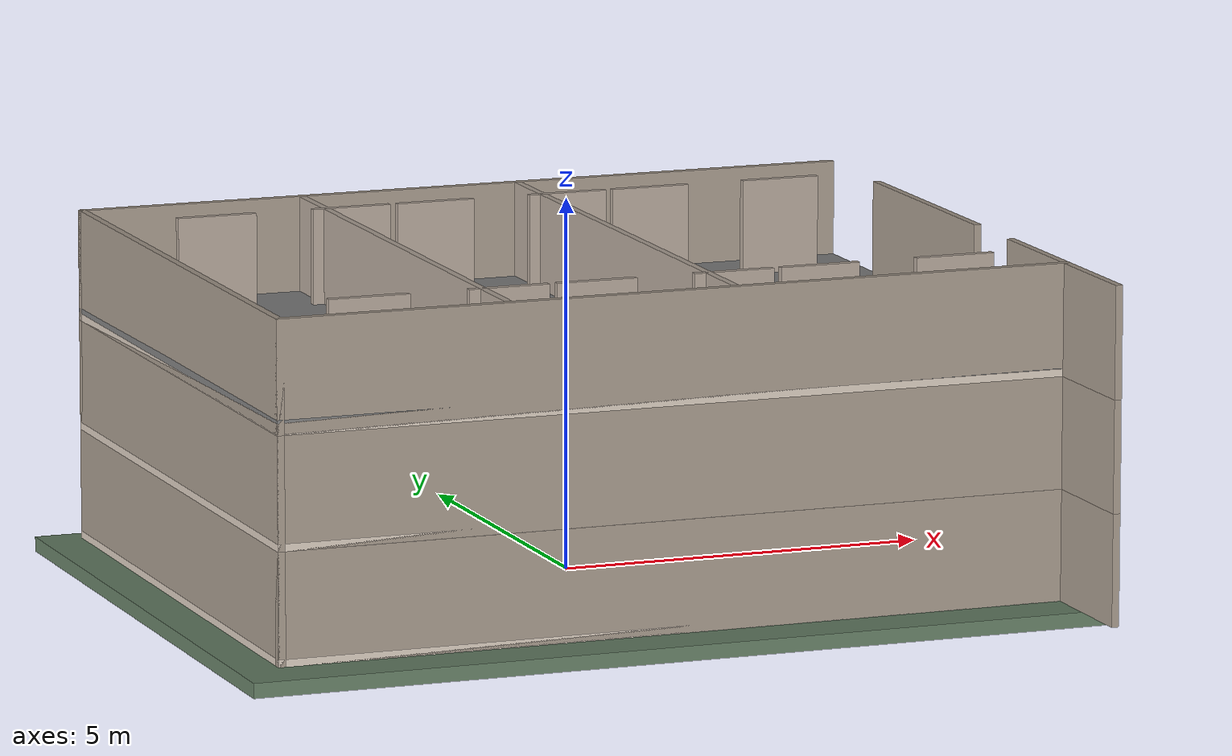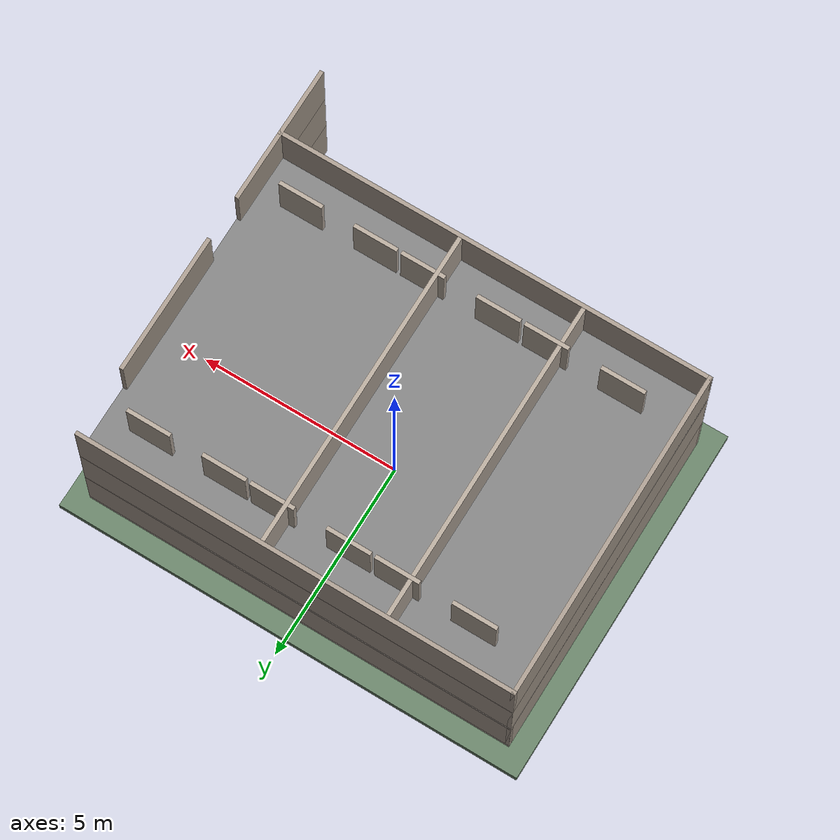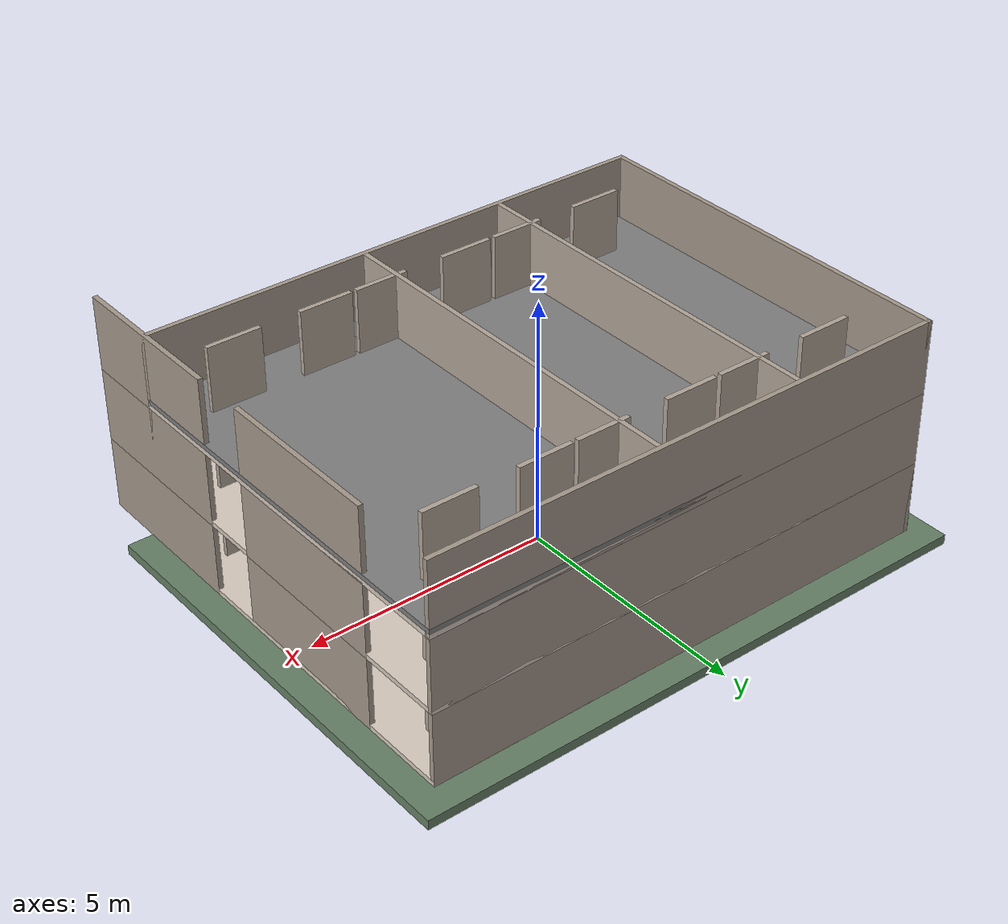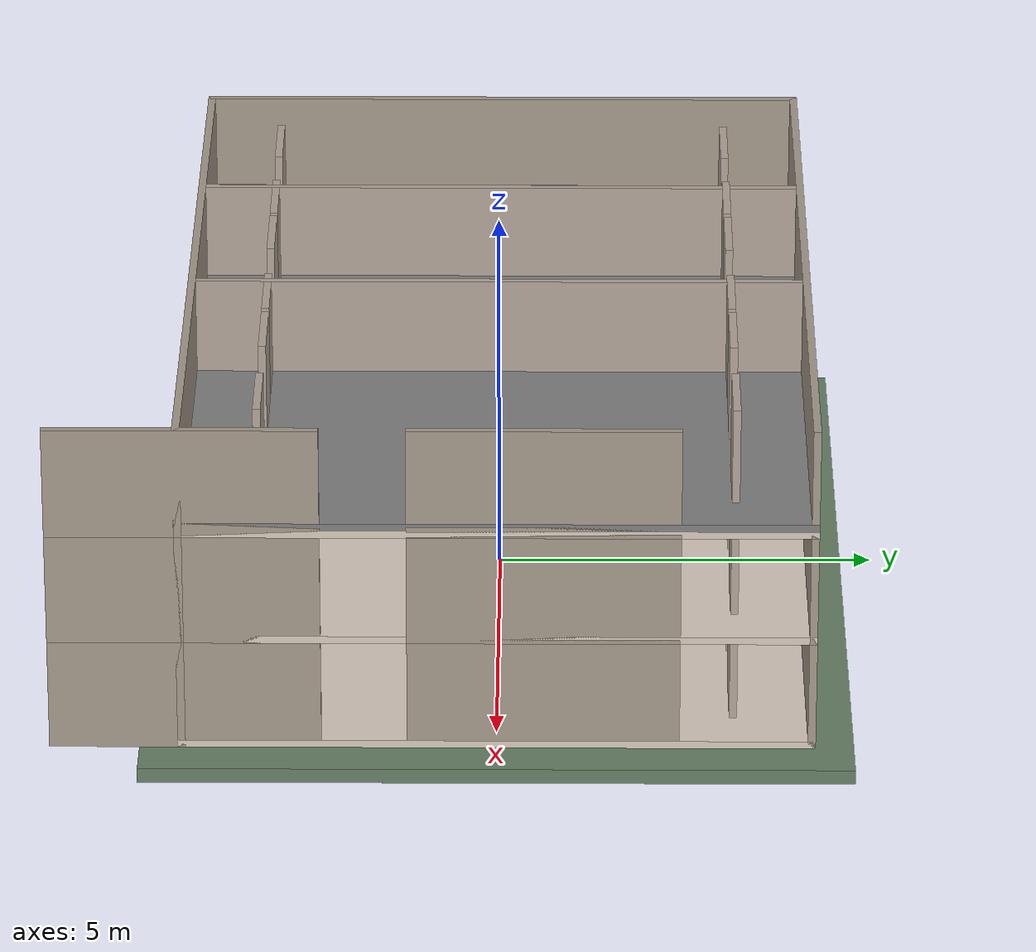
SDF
<?xml version='1.0'?>
<sdf version='1.7'>
  <model name='MultiFloorBuilding'>
    <static>true</static>

    <!-- Ground base -->
    <link name='ground_base'>
      <pose>0 0 -0.15 0 0 0</pose>
      <visual name='visual'>
        <geometry><box><size>11.9 9.2 0.2</size></box></geometry>
        <material><ambient>0.3 0.4 0.3 1</ambient><diffuse>0.4 0.5 0.4 1</diffuse></material>
      </visual>
      <collision name='collision'>
        <geometry><box><size>11.9 9.2 0.2</size></box></geometry>
      </collision>
    </link>

    <!-- Floor 0 -->
    <link name='floor_0'>
      <pose>0 0 0.05 0 0 0</pose>
      <visual name='visual'>
        <geometry><box><size>10.9 8.2 0.1</size></box></geometry>
        <material><ambient>0.8 0.75 0.7 1</ambient><diffuse>0.85 0.8 0.75 1</diffuse></material>
      </visual>
      <collision name='collision'>
        <geometry><box><size>10.9 8.2 0.1</size></box></geometry>
      </collision>
    </link>

    <!-- Outer walls -->
    <link name='outer_wall_north_0'>
      <pose>0 4.05 0.75 0 0 0</pose>
      <visual name='visual'>
        <geometry><box><size>10.9 0.1 1.5</size></box></geometry>
        <material><ambient>0.55 0.5 0.45 1</ambient><diffuse>0.65 0.6 0.55 1</diffuse></material>
      </visual>
      <collision name='collision'>
        <geometry><box><size>10.9 0.1 1.5</size></box></geometry>
      </collision>
    </link>

    <link name='outer_wall_south_0'>
      <pose>0 -4.05 0.75 0 0 0</pose>
      <visual name='visual'>
        <geometry><box><size>10.9 0.1 1.5</size></box></geometry>
        <material><ambient>0.55 0.5 0.45 1</ambient><diffuse>0.65 0.6 0.55 1</diffuse></material>
      </visual>
      <collision name='collision'>
        <geometry><box><size>10.9 0.1 1.5</size></box></geometry>
      </collision>
    </link>

    <link name='outer_wall_west_0'>
      <pose>-5.4 0 0.75 0 0 0</pose>
      <visual name='visual'>
        <geometry><box><size>0.1 8.2 1.5</size></box></geometry>
        <material><ambient>0.55 0.5 0.45 1</ambient><diffuse>0.65 0.6 0.55 1</diffuse></material>
      </visual>
      <collision name='collision'>
        <geometry><box><size>0.1 8.2 1.5</size></box></geometry>
      </collision>
    </link>

    <!-- East outer wall with entrance gap -->
    <link name='outer_wall_east_top_0'>
      <pose>5.4 0.6 0.75 0 0 0</pose>
      <visual name='visual'>
        <geometry><box><size>0.1 3.4999999999999996 1.5</size></box></geometry>
        <material><ambient>0.55 0.5 0.45 1</ambient><diffuse>0.65 0.6 0.55 1</diffuse></material>
      </visual>
      <collision name='collision'>
        <geometry><box><size>0.1 3.4999999999999996 1.5</size></box></geometry>
      </collision>
    </link>

    <link name='outer_wall_east_bottom_0'>
      <pose>5.4 -3.9999999999999996 0.75 0 0 0</pose>
      <visual name='visual'>
        <geometry><box><size>0.1 3.4999999999999996 1.5</size></box></geometry>
        <material><ambient>0.55 0.5 0.45 1</ambient><diffuse>0.65 0.6 0.55 1</diffuse></material>
      </visual>
      <collision name='collision'>
        <geometry><box><size>0.1 3.4999999999999996 1.5</size></box></geometry>
      </collision>
    </link>

    <!-- Room divider walls -->

    <link name='room_divider_0_0'>
      <pose>-2.3000000000000007 0 0.75 0 0 0</pose>
      <visual name='visual'>
        <geometry><box><size>0.1 7.999999999999999 1.5</size></box></geometry>
        <material><ambient>0.6 0.55 0.5 1</ambient><diffuse>0.7 0.65 0.6 1</diffuse></material>
      </visual>
      <collision name='collision'>
        <geometry><box><size>0.1 7.999999999999999 1.5</size></box></geometry>
      </collision>
    </link>

    <link name='room_divider_0_1'>
      <pose>0.7999999999999994 0 0.75 0 0 0</pose>
      <visual name='visual'>
        <geometry><box><size>0.1 7.999999999999999 1.5</size></box></geometry>
        <material><ambient>0.6 0.55 0.5 1</ambient><diffuse>0.7 0.65 0.6 1</diffuse></material>
      </visual>
      <collision name='collision'>
        <geometry><box><size>0.1 7.999999999999999 1.5</size></box></geometry>
      </collision>
    </link>

    <!-- North corridor wall -->

    <link name='corridor_wall_north_left_0_0'>
      <pose>-3.8500000000000005 3.05 0.75 0 0 0</pose>
      <visual name='visual'>
        <geometry><box><size>1.1 0.1 1.5</size></box></geometry>
        <material><ambient>0.6 0.55 0.5 1</ambient><diffuse>0.7 0.65 0.6 1</diffuse></material>
      </visual>
      <collision name='collision'>
        <geometry><box><size>1.1 0.1 1.5</size></box></geometry>
      </collision>
    </link>

    <link name='corridor_wall_north_right_0_0'>
      <pose>-1.9500000000000006 3.05 0.75 0 0 0</pose>
      <visual name='visual'>
        <geometry><box><size>1.1 0.1 1.5</size></box></geometry>
        <material><ambient>0.6 0.55 0.5 1</ambient><diffuse>0.7 0.65 0.6 1</diffuse></material>
      </visual>
      <collision name='collision'>
        <geometry><box><size>1.1 0.1 1.5</size></box></geometry>
      </collision>
    </link>

    <link name='corridor_wall_north_left_0_1'>
      <pose>-0.7500000000000004 3.05 0.75 0 0 0</pose>
      <visual name='visual'>
        <geometry><box><size>1.1 0.1 1.5</size></box></geometry>
        <material><ambient>0.6 0.55 0.5 1</ambient><diffuse>0.7 0.65 0.6 1</diffuse></material>
      </visual>
      <collision name='collision'>
        <geometry><box><size>1.1 0.1 1.5</size></box></geometry>
      </collision>
    </link>

    <link name='corridor_wall_north_right_0_1'>
      <pose>1.1499999999999997 3.05 0.75 0 0 0</pose>
      <visual name='visual'>
        <geometry><box><size>1.1 0.1 1.5</size></box></geometry>
        <material><ambient>0.6 0.55 0.5 1</ambient><diffuse>0.7 0.65 0.6 1</diffuse></material>
      </visual>
      <collision name='collision'>
        <geometry><box><size>1.1 0.1 1.5</size></box></geometry>
      </collision>
    </link>

    <link name='corridor_wall_north_left_0_2'>
      <pose>2.3499999999999996 3.05 0.75 0 0 0</pose>
      <visual name='visual'>
        <geometry><box><size>1.1 0.1 1.5</size></box></geometry>
        <material><ambient>0.6 0.55 0.5 1</ambient><diffuse>0.7 0.65 0.6 1</diffuse></material>
      </visual>
      <collision name='collision'>
        <geometry><box><size>1.1 0.1 1.5</size></box></geometry>
      </collision>
    </link>

    <link name='corridor_wall_north_right_0_2'>
      <pose>4.25 3.05 0.75 0 0 0</pose>
      <visual name='visual'>
        <geometry><box><size>1.1 0.1 1.5</size></box></geometry>
        <material><ambient>0.6 0.55 0.5 1</ambient><diffuse>0.7 0.65 0.6 1</diffuse></material>
      </visual>
      <collision name='collision'>
        <geometry><box><size>1.1 0.1 1.5</size></box></geometry>
      </collision>
    </link>

    <!-- South corridor wall -->

    <link name='corridor_wall_south_left_0_0'>
      <pose>-3.8500000000000005 -3.05 0.75 0 0 0</pose>
      <visual name='visual'>
        <geometry><box><size>1.1 0.1 1.5</size></box></geometry>
        <material><ambient>0.6 0.55 0.5 1</ambient><diffuse>0.7 0.65 0.6 1</diffuse></material>
      </visual>
      <collision name='collision'>
        <geometry><box><size>1.1 0.1 1.5</size></box></geometry>
      </collision>
    </link>

    <link name='corridor_wall_south_right_0_0'>
      <pose>-1.9500000000000006 -3.05 0.75 0 0 0</pose>
      <visual name='visual'>
        <geometry><box><size>1.1 0.1 1.5</size></box></geometry>
        <material><ambient>0.6 0.55 0.5 1</ambient><diffuse>0.7 0.65 0.6 1</diffuse></material>
      </visual>
      <collision name='collision'>
        <geometry><box><size>1.1 0.1 1.5</size></box></geometry>
      </collision>
    </link>

    <link name='corridor_wall_south_left_0_1'>
      <pose>-0.7500000000000004 -3.05 0.75 0 0 0</pose>
      <visual name='visual'>
        <geometry><box><size>1.1 0.1 1.5</size></box></geometry>
        <material><ambient>0.6 0.55 0.5 1</ambient><diffuse>0.7 0.65 0.6 1</diffuse></material>
      </visual>
      <collision name='collision'>
        <geometry><box><size>1.1 0.1 1.5</size></box></geometry>
      </collision>
    </link>

    <link name='corridor_wall_south_right_0_1'>
      <pose>1.1499999999999997 -3.05 0.75 0 0 0</pose>
      <visual name='visual'>
        <geometry><box><size>1.1 0.1 1.5</size></box></geometry>
        <material><ambient>0.6 0.55 0.5 1</ambient><diffuse>0.7 0.65 0.6 1</diffuse></material>
      </visual>
      <collision name='collision'>
        <geometry><box><size>1.1 0.1 1.5</size></box></geometry>
      </collision>
    </link>

    <link name='corridor_wall_south_left_0_2'>
      <pose>2.3499999999999996 -3.05 0.75 0 0 0</pose>
      <visual name='visual'>
        <geometry><box><size>1.1 0.1 1.5</size></box></geometry>
        <material><ambient>0.6 0.55 0.5 1</ambient><diffuse>0.7 0.65 0.6 1</diffuse></material>
      </visual>
      <collision name='collision'>
        <geometry><box><size>1.1 0.1 1.5</size></box></geometry>
      </collision>
    </link>

    <link name='corridor_wall_south_right_0_2'>
      <pose>4.25 -3.05 0.75 0 0 0</pose>
      <visual name='visual'>
        <geometry><box><size>1.1 0.1 1.5</size></box></geometry>
        <material><ambient>0.6 0.55 0.5 1</ambient><diffuse>0.7 0.65 0.6 1</diffuse></material>
      </visual>
      <collision name='collision'>
        <geometry><box><size>1.1 0.1 1.5</size></box></geometry>
      </collision>
    </link>

    <link name='stair_0_0'>
      <pose>-4.45 0 0.175 0 0 0</pose>
      <visual name='visual'>
        <geometry><box><size>0.3 1.5 0.15</size></box></geometry>
        <material><ambient>0.5 0.5 0.5 1</ambient><diffuse>0.6 0.6 0.6 1</diffuse></material>
      </visual>
      <collision name='collision'>
        <geometry><box><size>0.3 1.5 0.15</size></box></geometry>
      </collision>
    </link>

    <link name='stair_0_1'>
      <pose>-4.15 0 0.32499999999999996 0 0 0</pose>
      <visual name='visual'>
        <geometry><box><size>0.3 1.5 0.15</size></box></geometry>
        <material><ambient>0.5 0.5 0.5 1</ambient><diffuse>0.6 0.6 0.6 1</diffuse></material>
      </visual>
      <collision name='collision'>
        <geometry><box><size>0.3 1.5 0.15</size></box></geometry>
      </collision>
    </link>

    <link name='stair_0_2'>
      <pose>-3.85 0 0.475 0 0 0</pose>
      <visual name='visual'>
        <geometry><box><size>0.3 1.5 0.15</size></box></geometry>
        <material><ambient>0.5 0.5 0.5 1</ambient><diffuse>0.6 0.6 0.6 1</diffuse></material>
      </visual>
      <collision name='collision'>
        <geometry><box><size>0.3 1.5 0.15</size></box></geometry>
      </collision>
    </link>

    <link name='stair_0_3'>
      <pose>-3.5500000000000003 0 0.625 0 0 0</pose>
      <visual name='visual'>
        <geometry><box><size>0.3 1.5 0.15</size></box></geometry>
        <material><ambient>0.5 0.5 0.5 1</ambient><diffuse>0.6 0.6 0.6 1</diffuse></material>
      </visual>
      <collision name='collision'>
        <geometry><box><size>0.3 1.5 0.15</size></box></geometry>
      </collision>
    </link>

    <link name='stair_0_4'>
      <pose>-3.25 0 0.7749999999999999 0 0 0</pose>
      <visual name='visual'>
        <geometry><box><size>0.3 1.5 0.15</size></box></geometry>
        <material><ambient>0.5 0.5 0.5 1</ambient><diffuse>0.6 0.6 0.6 1</diffuse></material>
      </visual>
      <collision name='collision'>
        <geometry><box><size>0.3 1.5 0.15</size></box></geometry>
      </collision>
    </link>

    <link name='stair_0_5'>
      <pose>-2.95 0 0.925 0 0 0</pose>
      <visual name='visual'>
        <geometry><box><size>0.3 1.5 0.15</size></box></geometry>
        <material><ambient>0.5 0.5 0.5 1</ambient><diffuse>0.6 0.6 0.6 1</diffuse></material>
      </visual>
      <collision name='collision'>
        <geometry><box><size>0.3 1.5 0.15</size></box></geometry>
      </collision>
    </link>

    <link name='stair_0_6'>
      <pose>-2.6500000000000004 0 1.075 0 0 0</pose>
      <visual name='visual'>
        <geometry><box><size>0.3 1.5 0.15</size></box></geometry>
        <material><ambient>0.5 0.5 0.5 1</ambient><diffuse>0.6 0.6 0.6 1</diffuse></material>
      </visual>
      <collision name='collision'>
        <geometry><box><size>0.3 1.5 0.15</size></box></geometry>
      </collision>
    </link>

    <link name='stair_0_7'>
      <pose>-2.35 0 1.225 0 0 0</pose>
      <visual name='visual'>
        <geometry><box><size>0.3 1.5 0.15</size></box></geometry>
        <material><ambient>0.5 0.5 0.5 1</ambient><diffuse>0.6 0.6 0.6 1</diffuse></material>
      </visual>
      <collision name='collision'>
        <geometry><box><size>0.3 1.5 0.15</size></box></geometry>
      </collision>
    </link>

    <link name='stair_0_8'>
      <pose>-2.0500000000000003 0 1.375 0 0 0</pose>
      <visual name='visual'>
        <geometry><box><size>0.3 1.5 0.15</size></box></geometry>
        <material><ambient>0.5 0.5 0.5 1</ambient><diffuse>0.6 0.6 0.6 1</diffuse></material>
      </visual>
      <collision name='collision'>
        <geometry><box><size>0.3 1.5 0.15</size></box></geometry>
      </collision>
    </link>

    <link name='stair_0_9'>
      <pose>-1.7500000000000004 0 1.525 0 0 0</pose>
      <visual name='visual'>
        <geometry><box><size>0.3 1.5 0.15</size></box></geometry>
        <material><ambient>0.5 0.5 0.5 1</ambient><diffuse>0.6 0.6 0.6 1</diffuse></material>
      </visual>
      <collision name='collision'>
        <geometry><box><size>0.3 1.5 0.15</size></box></geometry>
      </collision>
    </link>

    <!-- Floor 1 -->
    <link name='floor_1'>
      <pose>0 0 1.55 0 0 0</pose>
      <visual name='visual'>
        <geometry><box><size>10.9 8.2 0.1</size></box></geometry>
        <material><ambient>0.8 0.75 0.7 1</ambient><diffuse>0.85 0.8 0.75 1</diffuse></material>
      </visual>
      <collision name='collision'>
        <geometry><box><size>10.9 8.2 0.1</size></box></geometry>
      </collision>
    </link>

    <!-- Outer walls -->
    <link name='outer_wall_north_1'>
      <pose>0 4.05 2.25 0 0 0</pose>
      <visual name='visual'>
        <geometry><box><size>10.9 0.1 1.5</size></box></geometry>
        <material><ambient>0.55 0.5 0.45 1</ambient><diffuse>0.65 0.6 0.55 1</diffuse></material>
      </visual>
      <collision name='collision'>
        <geometry><box><size>10.9 0.1 1.5</size></box></geometry>
      </collision>
    </link>

    <link name='outer_wall_south_1'>
      <pose>0 -4.05 2.25 0 0 0</pose>
      <visual name='visual'>
        <geometry><box><size>10.9 0.1 1.5</size></box></geometry>
        <material><ambient>0.55 0.5 0.45 1</ambient><diffuse>0.65 0.6 0.55 1</diffuse></material>
      </visual>
      <collision name='collision'>
        <geometry><box><size>10.9 0.1 1.5</size></box></geometry>
      </collision>
    </link>

    <link name='outer_wall_west_1'>
      <pose>-5.4 0 2.25 0 0 0</pose>
      <visual name='visual'>
        <geometry><box><size>0.1 8.2 1.5</size></box></geometry>
        <material><ambient>0.55 0.5 0.45 1</ambient><diffuse>0.65 0.6 0.55 1</diffuse></material>
      </visual>
      <collision name='collision'>
        <geometry><box><size>0.1 8.2 1.5</size></box></geometry>
      </collision>
    </link>

    <!-- East outer wall with entrance gap -->
    <link name='outer_wall_east_top_1'>
      <pose>5.4 0.6 2.25 0 0 0</pose>
      <visual name='visual'>
        <geometry><box><size>0.1 3.4999999999999996 1.5</size></box></geometry>
        <material><ambient>0.55 0.5 0.45 1</ambient><diffuse>0.65 0.6 0.55 1</diffuse></material>
      </visual>
      <collision name='collision'>
        <geometry><box><size>0.1 3.4999999999999996 1.5</size></box></geometry>
      </collision>
    </link>

    <link name='outer_wall_east_bottom_1'>
      <pose>5.4 -3.9999999999999996 2.25 0 0 0</pose>
      <visual name='visual'>
        <geometry><box><size>0.1 3.4999999999999996 1.5</size></box></geometry>
        <material><ambient>0.55 0.5 0.45 1</ambient><diffuse>0.65 0.6 0.55 1</diffuse></material>
      </visual>
      <collision name='collision'>
        <geometry><box><size>0.1 3.4999999999999996 1.5</size></box></geometry>
      </collision>
    </link>

    <!-- Room divider walls -->

    <link name='room_divider_1_0'>
      <pose>-2.3000000000000007 0 2.25 0 0 0</pose>
      <visual name='visual'>
        <geometry><box><size>0.1 7.999999999999999 1.5</size></box></geometry>
        <material><ambient>0.6 0.55 0.5 1</ambient><diffuse>0.7 0.65 0.6 1</diffuse></material>
      </visual>
      <collision name='collision'>
        <geometry><box><size>0.1 7.999999999999999 1.5</size></box></geometry>
      </collision>
    </link>

    <link name='room_divider_1_1'>
      <pose>0.7999999999999994 0 2.25 0 0 0</pose>
      <visual name='visual'>
        <geometry><box><size>0.1 7.999999999999999 1.5</size></box></geometry>
        <material><ambient>0.6 0.55 0.5 1</ambient><diffuse>0.7 0.65 0.6 1</diffuse></material>
      </visual>
      <collision name='collision'>
        <geometry><box><size>0.1 7.999999999999999 1.5</size></box></geometry>
      </collision>
    </link>

    <!-- North corridor wall -->

    <link name='corridor_wall_north_left_1_0'>
      <pose>-3.8500000000000005 3.05 2.25 0 0 0</pose>
      <visual name='visual'>
        <geometry><box><size>1.1 0.1 1.5</size></box></geometry>
        <material><ambient>0.6 0.55 0.5 1</ambient><diffuse>0.7 0.65 0.6 1</diffuse></material>
      </visual>
      <collision name='collision'>
        <geometry><box><size>1.1 0.1 1.5</size></box></geometry>
      </collision>
    </link>

    <link name='corridor_wall_north_right_1_0'>
      <pose>-1.9500000000000006 3.05 2.25 0 0 0</pose>
      <visual name='visual'>
        <geometry><box><size>1.1 0.1 1.5</size></box></geometry>
        <material><ambient>0.6 0.55 0.5 1</ambient><diffuse>0.7 0.65 0.6 1</diffuse></material>
      </visual>
      <collision name='collision'>
        <geometry><box><size>1.1 0.1 1.5</size></box></geometry>
      </collision>
    </link>

    <link name='corridor_wall_north_left_1_1'>
      <pose>-0.7500000000000004 3.05 2.25 0 0 0</pose>
      <visual name='visual'>
        <geometry><box><size>1.1 0.1 1.5</size></box></geometry>
        <material><ambient>0.6 0.55 0.5 1</ambient><diffuse>0.7 0.65 0.6 1</diffuse></material>
      </visual>
      <collision name='collision'>
        <geometry><box><size>1.1 0.1 1.5</size></box></geometry>
      </collision>
    </link>

    <link name='corridor_wall_north_right_1_1'>
      <pose>1.1499999999999997 3.05 2.25 0 0 0</pose>
      <visual name='visual'>
        <geometry><box><size>1.1 0.1 1.5</size></box></geometry>
        <material><ambient>0.6 0.55 0.5 1</ambient><diffuse>0.7 0.65 0.6 1</diffuse></material>
      </visual>
      <collision name='collision'>
        <geometry><box><size>1.1 0.1 1.5</size></box></geometry>
      </collision>
    </link>

    <link name='corridor_wall_north_left_1_2'>
      <pose>2.3499999999999996 3.05 2.25 0 0 0</pose>
      <visual name='visual'>
        <geometry><box><size>1.1 0.1 1.5</size></box></geometry>
        <material><ambient>0.6 0.55 0.5 1</ambient><diffuse>0.7 0.65 0.6 1</diffuse></material>
      </visual>
      <collision name='collision'>
        <geometry><box><size>1.1 0.1 1.5</size></box></geometry>
      </collision>
    </link>

    <link name='corridor_wall_north_right_1_2'>
      <pose>4.25 3.05 2.25 0 0 0</pose>
      <visual name='visual'>
        <geometry><box><size>1.1 0.1 1.5</size></box></geometry>
        <material><ambient>0.6 0.55 0.5 1</ambient><diffuse>0.7 0.65 0.6 1</diffuse></material>
      </visual>
      <collision name='collision'>
        <geometry><box><size>1.1 0.1 1.5</size></box></geometry>
      </collision>
    </link>

    <!-- South corridor wall -->

    <link name='corridor_wall_south_left_1_0'>
      <pose>-3.8500000000000005 -3.05 2.25 0 0 0</pose>
      <visual name='visual'>
        <geometry><box><size>1.1 0.1 1.5</size></box></geometry>
        <material><ambient>0.6 0.55 0.5 1</ambient><diffuse>0.7 0.65 0.6 1</diffuse></material>
      </visual>
      <collision name='collision'>
        <geometry><box><size>1.1 0.1 1.5</size></box></geometry>
      </collision>
    </link>

    <link name='corridor_wall_south_right_1_0'>
      <pose>-1.9500000000000006 -3.05 2.25 0 0 0</pose>
      <visual name='visual'>
        <geometry><box><size>1.1 0.1 1.5</size></box></geometry>
        <material><ambient>0.6 0.55 0.5 1</ambient><diffuse>0.7 0.65 0.6 1</diffuse></material>
      </visual>
      <collision name='collision'>
        <geometry><box><size>1.1 0.1 1.5</size></box></geometry>
      </collision>
    </link>

    <link name='corridor_wall_south_left_1_1'>
      <pose>-0.7500000000000004 -3.05 2.25 0 0 0</pose>
      <visual name='visual'>
        <geometry><box><size>1.1 0.1 1.5</size></box></geometry>
        <material><ambient>0.6 0.55 0.5 1</ambient><diffuse>0.7 0.65 0.6 1</diffuse></material>
      </visual>
      <collision name='collision'>
        <geometry><box><size>1.1 0.1 1.5</size></box></geometry>
      </collision>
    </link>

    <link name='corridor_wall_south_right_1_1'>
      <pose>1.1499999999999997 -3.05 2.25 0 0 0</pose>
      <visual name='visual'>
        <geometry><box><size>1.1 0.1 1.5</size></box></geometry>
        <material><ambient>0.6 0.55 0.5 1</ambient><diffuse>0.7 0.65 0.6 1</diffuse></material>
      </visual>
      <collision name='collision'>
        <geometry><box><size>1.1 0.1 1.5</size></box></geometry>
      </collision>
    </link>

    <link name='corridor_wall_south_left_1_2'>
      <pose>2.3499999999999996 -3.05 2.25 0 0 0</pose>
      <visual name='visual'>
        <geometry><box><size>1.1 0.1 1.5</size></box></geometry>
        <material><ambient>0.6 0.55 0.5 1</ambient><diffuse>0.7 0.65 0.6 1</diffuse></material>
      </visual>
      <collision name='collision'>
        <geometry><box><size>1.1 0.1 1.5</size></box></geometry>
      </collision>
    </link>

    <link name='corridor_wall_south_right_1_2'>
      <pose>4.25 -3.05 2.25 0 0 0</pose>
      <visual name='visual'>
        <geometry><box><size>1.1 0.1 1.5</size></box></geometry>
        <material><ambient>0.6 0.55 0.5 1</ambient><diffuse>0.7 0.65 0.6 1</diffuse></material>
      </visual>
      <collision name='collision'>
        <geometry><box><size>1.1 0.1 1.5</size></box></geometry>
      </collision>
    </link>

    <link name='stair_1_0'>
      <pose>-4.45 0 1.675 0 0 0</pose>
      <visual name='visual'>
        <geometry><box><size>0.3 1.5 0.15</size></box></geometry>
        <material><ambient>0.5 0.5 0.5 1</ambient><diffuse>0.6 0.6 0.6 1</diffuse></material>
      </visual>
      <collision name='collision'>
        <geometry><box><size>0.3 1.5 0.15</size></box></geometry>
      </collision>
    </link>

    <link name='stair_1_1'>
      <pose>-4.15 0 1.825 0 0 0</pose>
      <visual name='visual'>
        <geometry><box><size>0.3 1.5 0.15</size></box></geometry>
        <material><ambient>0.5 0.5 0.5 1</ambient><diffuse>0.6 0.6 0.6 1</diffuse></material>
      </visual>
      <collision name='collision'>
        <geometry><box><size>0.3 1.5 0.15</size></box></geometry>
      </collision>
    </link>

    <link name='stair_1_2'>
      <pose>-3.85 0 1.975 0 0 0</pose>
      <visual name='visual'>
        <geometry><box><size>0.3 1.5 0.15</size></box></geometry>
        <material><ambient>0.5 0.5 0.5 1</ambient><diffuse>0.6 0.6 0.6 1</diffuse></material>
      </visual>
      <collision name='collision'>
        <geometry><box><size>0.3 1.5 0.15</size></box></geometry>
      </collision>
    </link>

    <link name='stair_1_3'>
      <pose>-3.5500000000000003 0 2.125 0 0 0</pose>
      <visual name='visual'>
        <geometry><box><size>0.3 1.5 0.15</size></box></geometry>
        <material><ambient>0.5 0.5 0.5 1</ambient><diffuse>0.6 0.6 0.6 1</diffuse></material>
      </visual>
      <collision name='collision'>
        <geometry><box><size>0.3 1.5 0.15</size></box></geometry>
      </collision>
    </link>

    <link name='stair_1_4'>
      <pose>-3.25 0 2.275 0 0 0</pose>
      <visual name='visual'>
        <geometry><box><size>0.3 1.5 0.15</size></box></geometry>
        <material><ambient>0.5 0.5 0.5 1</ambient><diffuse>0.6 0.6 0.6 1</diffuse></material>
      </visual>
      <collision name='collision'>
        <geometry><box><size>0.3 1.5 0.15</size></box></geometry>
      </collision>
    </link>

    <link name='stair_1_5'>
      <pose>-2.95 0 2.425 0 0 0</pose>
      <visual name='visual'>
        <geometry><box><size>0.3 1.5 0.15</size></box></geometry>
        <material><ambient>0.5 0.5 0.5 1</ambient><diffuse>0.6 0.6 0.6 1</diffuse></material>
      </visual>
      <collision name='collision'>
        <geometry><box><size>0.3 1.5 0.15</size></box></geometry>
      </collision>
    </link>

    <link name='stair_1_6'>
      <pose>-2.6500000000000004 0 2.575 0 0 0</pose>
      <visual name='visual'>
        <geometry><box><size>0.3 1.5 0.15</size></box></geometry>
        <material><ambient>0.5 0.5 0.5 1</ambient><diffuse>0.6 0.6 0.6 1</diffuse></material>
      </visual>
      <collision name='collision'>
        <geometry><box><size>0.3 1.5 0.15</size></box></geometry>
      </collision>
    </link>

    <link name='stair_1_7'>
      <pose>-2.35 0 2.725 0 0 0</pose>
      <visual name='visual'>
        <geometry><box><size>0.3 1.5 0.15</size></box></geometry>
        <material><ambient>0.5 0.5 0.5 1</ambient><diffuse>0.6 0.6 0.6 1</diffuse></material>
      </visual>
      <collision name='collision'>
        <geometry><box><size>0.3 1.5 0.15</size></box></geometry>
      </collision>
    </link>

    <link name='stair_1_8'>
      <pose>-2.0500000000000003 0 2.875 0 0 0</pose>
      <visual name='visual'>
        <geometry><box><size>0.3 1.5 0.15</size></box></geometry>
        <material><ambient>0.5 0.5 0.5 1</ambient><diffuse>0.6 0.6 0.6 1</diffuse></material>
      </visual>
      <collision name='collision'>
        <geometry><box><size>0.3 1.5 0.15</size></box></geometry>
      </collision>
    </link>

    <link name='stair_1_9'>
      <pose>-1.7500000000000004 0 3.025 0 0 0</pose>
      <visual name='visual'>
        <geometry><box><size>0.3 1.5 0.15</size></box></geometry>
        <material><ambient>0.5 0.5 0.5 1</ambient><diffuse>0.6 0.6 0.6 1</diffuse></material>
      </visual>
      <collision name='collision'>
        <geometry><box><size>0.3 1.5 0.15</size></box></geometry>
      </collision>
    </link>

    <!-- Floor 2 -->
    <link name='floor_2'>
      <pose>0 0 3.05 0 0 0</pose>
      <visual name='visual'>
        <geometry><box><size>10.9 8.2 0.1</size></box></geometry>
        <material><ambient>0.8 0.75 0.7 1</ambient><diffuse>0.85 0.8 0.75 1</diffuse></material>
      </visual>
      <collision name='collision'>
        <geometry><box><size>10.9 8.2 0.1</size></box></geometry>
      </collision>
    </link>

    <!-- Outer walls -->
    <link name='outer_wall_north_2'>
      <pose>0 4.05 3.75 0 0 0</pose>
      <visual name='visual'>
        <geometry><box><size>10.9 0.1 1.5</size></box></geometry>
        <material><ambient>0.55 0.5 0.45 1</ambient><diffuse>0.65 0.6 0.55 1</diffuse></material>
      </visual>
      <collision name='collision'>
        <geometry><box><size>10.9 0.1 1.5</size></box></geometry>
      </collision>
    </link>

    <link name='outer_wall_south_2'>
      <pose>0 -4.05 3.75 0 0 0</pose>
      <visual name='visual'>
        <geometry><box><size>10.9 0.1 1.5</size></box></geometry>
        <material><ambient>0.55 0.5 0.45 1</ambient><diffuse>0.65 0.6 0.55 1</diffuse></material>
      </visual>
      <collision name='collision'>
        <geometry><box><size>10.9 0.1 1.5</size></box></geometry>
      </collision>
    </link>

    <link name='outer_wall_west_2'>
      <pose>-5.4 0 3.75 0 0 0</pose>
      <visual name='visual'>
        <geometry><box><size>0.1 8.2 1.5</size></box></geometry>
        <material><ambient>0.55 0.5 0.45 1</ambient><diffuse>0.65 0.6 0.55 1</diffuse></material>
      </visual>
      <collision name='collision'>
        <geometry><box><size>0.1 8.2 1.5</size></box></geometry>
      </collision>
    </link>

    <!-- East outer wall with entrance gap -->
    <link name='outer_wall_east_top_2'>
      <pose>5.4 0.6 3.75 0 0 0</pose>
      <visual name='visual'>
        <geometry><box><size>0.1 3.4999999999999996 1.5</size></box></geometry>
        <material><ambient>0.55 0.5 0.45 1</ambient><diffuse>0.65 0.6 0.55 1</diffuse></material>
      </visual>
      <collision name='collision'>
        <geometry><box><size>0.1 3.4999999999999996 1.5</size></box></geometry>
      </collision>
    </link>

    <link name='outer_wall_east_bottom_2'>
      <pose>5.4 -3.9999999999999996 3.75 0 0 0</pose>
      <visual name='visual'>
        <geometry><box><size>0.1 3.4999999999999996 1.5</size></box></geometry>
        <material><ambient>0.55 0.5 0.45 1</ambient><diffuse>0.65 0.6 0.55 1</diffuse></material>
      </visual>
      <collision name='collision'>
        <geometry><box><size>0.1 3.4999999999999996 1.5</size></box></geometry>
      </collision>
    </link>

    <!-- Room divider walls -->

    <link name='room_divider_2_0'>
      <pose>-2.3000000000000007 0 3.75 0 0 0</pose>
      <visual name='visual'>
        <geometry><box><size>0.1 7.999999999999999 1.5</size></box></geometry>
        <material><ambient>0.6 0.55 0.5 1</ambient><diffuse>0.7 0.65 0.6 1</diffuse></material>
      </visual>
      <collision name='collision'>
        <geometry><box><size>0.1 7.999999999999999 1.5</size></box></geometry>
      </collision>
    </link>

    <link name='room_divider_2_1'>
      <pose>0.7999999999999994 0 3.75 0 0 0</pose>
      <visual name='visual'>
        <geometry><box><size>0.1 7.999999999999999 1.5</size></box></geometry>
        <material><ambient>0.6 0.55 0.5 1</ambient><diffuse>0.7 0.65 0.6 1</diffuse></material>
      </visual>
      <collision name='collision'>
        <geometry><box><size>0.1 7.999999999999999 1.5</size></box></geometry>
      </collision>
    </link>

    <!-- North corridor wall -->

    <link name='corridor_wall_north_left_2_0'>
      <pose>-3.8500000000000005 3.05 3.75 0 0 0</pose>
      <visual name='visual'>
        <geometry><box><size>1.1 0.1 1.5</size></box></geometry>
        <material><ambient>0.6 0.55 0.5 1</ambient><diffuse>0.7 0.65 0.6 1</diffuse></material>
      </visual>
      <collision name='collision'>
        <geometry><box><size>1.1 0.1 1.5</size></box></geometry>
      </collision>
    </link>

    <link name='corridor_wall_north_right_2_0'>
      <pose>-1.9500000000000006 3.05 3.75 0 0 0</pose>
      <visual name='visual'>
        <geometry><box><size>1.1 0.1 1.5</size></box></geometry>
        <material><ambient>0.6 0.55 0.5 1</ambient><diffuse>0.7 0.65 0.6 1</diffuse></material>
      </visual>
      <collision name='collision'>
        <geometry><box><size>1.1 0.1 1.5</size></box></geometry>
      </collision>
    </link>

    <link name='corridor_wall_north_left_2_1'>
      <pose>-0.7500000000000004 3.05 3.75 0 0 0</pose>
      <visual name='visual'>
        <geometry><box><size>1.1 0.1 1.5</size></box></geometry>
        <material><ambient>0.6 0.55 0.5 1</ambient><diffuse>0.7 0.65 0.6 1</diffuse></material>
      </visual>
      <collision name='collision'>
        <geometry><box><size>1.1 0.1 1.5</size></box></geometry>
      </collision>
    </link>

    <link name='corridor_wall_north_right_2_1'>
      <pose>1.1499999999999997 3.05 3.75 0 0 0</pose>
      <visual name='visual'>
        <geometry><box><size>1.1 0.1 1.5</size></box></geometry>
        <material><ambient>0.6 0.55 0.5 1</ambient><diffuse>0.7 0.65 0.6 1</diffuse></material>
      </visual>
      <collision name='collision'>
        <geometry><box><size>1.1 0.1 1.5</size></box></geometry>
      </collision>
    </link>

    <link name='corridor_wall_north_left_2_2'>
      <pose>2.3499999999999996 3.05 3.75 0 0 0</pose>
      <visual name='visual'>
        <geometry><box><size>1.1 0.1 1.5</size></box></geometry>
        <material><ambient>0.6 0.55 0.5 1</ambient><diffuse>0.7 0.65 0.6 1</diffuse></material>
      </visual>
      <collision name='collision'>
        <geometry><box><size>1.1 0.1 1.5</size></box></geometry>
      </collision>
    </link>

    <link name='corridor_wall_north_right_2_2'>
      <pose>4.25 3.05 3.75 0 0 0</pose>
      <visual name='visual'>
        <geometry><box><size>1.1 0.1 1.5</size></box></geometry>
        <material><ambient>0.6 0.55 0.5 1</ambient><diffuse>0.7 0.65 0.6 1</diffuse></material>
      </visual>
      <collision name='collision'>
        <geometry><box><size>1.1 0.1 1.5</size></box></geometry>
      </collision>
    </link>

    <!-- South corridor wall -->

    <link name='corridor_wall_south_left_2_0'>
      <pose>-3.8500000000000005 -3.05 3.75 0 0 0</pose>
      <visual name='visual'>
        <geometry><box><size>1.1 0.1 1.5</size></box></geometry>
        <material><ambient>0.6 0.55 0.5 1</ambient><diffuse>0.7 0.65 0.6 1</diffuse></material>
      </visual>
      <collision name='collision'>
        <geometry><box><size>1.1 0.1 1.5</size></box></geometry>
      </collision>
    </link>

    <link name='corridor_wall_south_right_2_0'>
      <pose>-1.9500000000000006 -3.05 3.75 0 0 0</pose>
      <visual name='visual'>
        <geometry><box><size>1.1 0.1 1.5</size></box></geometry>
        <material><ambient>0.6 0.55 0.5 1</ambient><diffuse>0.7 0.65 0.6 1</diffuse></material>
      </visual>
      <collision name='collision'>
        <geometry><box><size>1.1 0.1 1.5</size></box></geometry>
      </collision>
    </link>

    <link name='corridor_wall_south_left_2_1'>
      <pose>-0.7500000000000004 -3.05 3.75 0 0 0</pose>
      <visual name='visual'>
        <geometry><box><size>1.1 0.1 1.5</size></box></geometry>
        <material><ambient>0.6 0.55 0.5 1</ambient><diffuse>0.7 0.65 0.6 1</diffuse></material>
      </visual>
      <collision name='collision'>
        <geometry><box><size>1.1 0.1 1.5</size></box></geometry>
      </collision>
    </link>

    <link name='corridor_wall_south_right_2_1'>
      <pose>1.1499999999999997 -3.05 3.75 0 0 0</pose>
      <visual name='visual'>
        <geometry><box><size>1.1 0.1 1.5</size></box></geometry>
        <material><ambient>0.6 0.55 0.5 1</ambient><diffuse>0.7 0.65 0.6 1</diffuse></material>
      </visual>
      <collision name='collision'>
        <geometry><box><size>1.1 0.1 1.5</size></box></geometry>
      </collision>
    </link>

    <link name='corridor_wall_south_left_2_2'>
      <pose>2.3499999999999996 -3.05 3.75 0 0 0</pose>
      <visual name='visual'>
        <geometry><box><size>1.1 0.1 1.5</size></box></geometry>
        <material><ambient>0.6 0.55 0.5 1</ambient><diffuse>0.7 0.65 0.6 1</diffuse></material>
      </visual>
      <collision name='collision'>
        <geometry><box><size>1.1 0.1 1.5</size></box></geometry>
      </collision>
    </link>

    <link name='corridor_wall_south_right_2_2'>
      <pose>4.25 -3.05 3.75 0 0 0</pose>
      <visual name='visual'>
        <geometry><box><size>1.1 0.1 1.5</size></box></geometry>
        <material><ambient>0.6 0.55 0.5 1</ambient><diffuse>0.7 0.65 0.6 1</diffuse></material>
      </visual>
      <collision name='collision'>
        <geometry><box><size>1.1 0.1 1.5</size></box></geometry>
      </collision>
    </link>

    <!-- Roof -->
    <link name='roof'>
      <pose>0 0 3.15 0 0 0</pose>
      <visual name='visual'>
        <geometry><box><size>10.9 8.2 0.1</size></box></geometry>
        <material><ambient>0.4 0.4 0.4 1</ambient><diffuse>0.5 0.5 0.5 1</diffuse></material>
      </visual>
      <collision name='collision'>
        <geometry><box><size>10.9 8.2 0.1</size></box></geometry>
      </collision>
    </link>

  </model>
</sdf>
